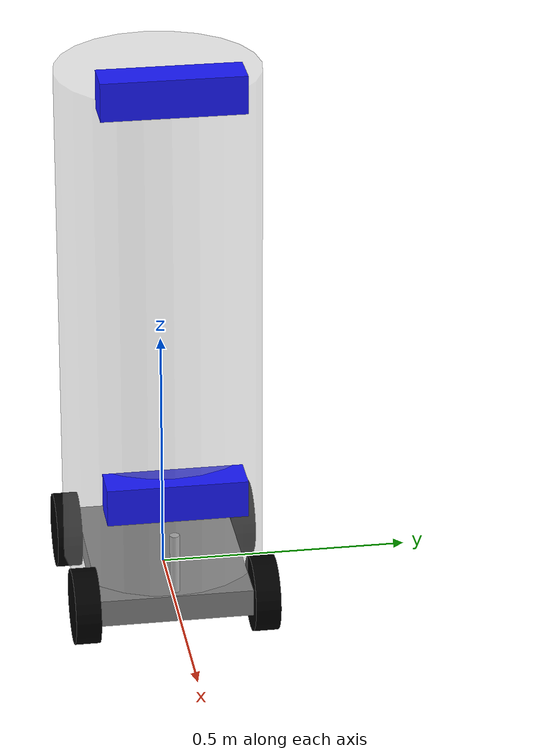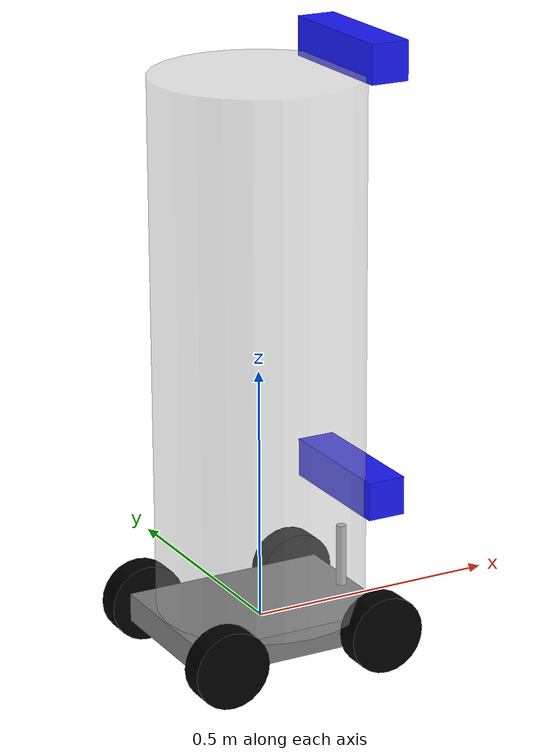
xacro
<?xml version="1.0"?>
<robot name="sherpa"
       xmlns:sensor="http://playerstage.sourceforge.net/gazebo/xmlschema/#sensor"
       xmlns:controller="http://playerstage.sourceforge.net/gazebo/xmlschema/#controller"
       xmlns:interface="http://playerstage.sourceforge.net/gazebo/xmlschema/#interface"
       xmlns:xacro="http://ros.org/wiki/xacro">

  <link name="base_link">
    <visual>
      <geometry>
        <box size="0.41148 0.30988 0.05588"/>
      </geometry>
      <material name="grey">
	<color rgba="0.5 0.5 0.5 1"/>
      </material>
    </visual>
    <collision>
      <geometry>
        <box size="0.41148 0.30988 0.05588"/>
      </geometry>
    </collision>
   <inertial>
      <mass value="20.0"/>
      <inertia ixx="1.0" iyy="1.0" izz="1.0"
               ixy="0" ixz="0" iyz="0"/>
    </inertial>
  </link>

  <gazebo reference="base_link">
    <material>Gazebo/Black</material>
  </gazebo>

  <link name="body_link">
    <visual>
      <geometry>
        <cylinder length="1.04775" radius="0.2032"/>
      </geometry>
      <material name="clear">
        <color rgba="0.75 0.75 0.75 0.4"/>
      </material>
    </visual>
    <collision>
      <geometry>
        <cylinder length="1.04775" radius="0.2032"/>
      </geometry>
    </collision>
    <inertial>
      <mass value="10.0"/>
      <inertia ixx="1.0" iyy="1.0" izz="1.0"
               ixy="0" ixz="0" iyz="0"/>
    </inertial>
  </link>

  <joint name="center_joint" type="fixed">
    <axis xyz="0 0 1"/>
    <parent link="base_link"/>
    <child link="body_link"/>
    <origin rpy="0 0 0" xyz="0 0 0.551815"/>
  </joint>

  <link name="camera_link">
    <visual>
      <geometry>
        <box size="0.0762 0.2794 0.0762"/>
      </geometry>
      <material name="blue">
	<color rgba="0.1 0.1 1 1"/>
      </material>
    </visual>
    <collision>
      <geometry>
        <box size="0.0762 0.2794 0.0762"/>
      </geometry>
    </collision>
   <inertial>
      <mass value="0.25"/>
      <inertia ixx="1.0" iyy="1.0" izz="1.0"
               ixy="0" ixz="0" iyz="0"/>
    </inertial>
  </link>

  <joint name="camera_joint" type="fixed">
    <axis xyz="0 0 1"/>
    <parent link="body_link"/>
    <child link="camera_link"/>
    <origin rpy="0 0 0" xyz="0.2 0 -0.3"/>
  </joint>

  <link name="laser_link">
    <visual>
      <geometry>
        <box size="0.0762 0.2794 0.0762"/>
      </geometry>
      <material name="blue">
	<color rgba="0.1 0.1 1 1"/>
      </material>
    </visual>
   <inertial>
      <mass value="0.25"/>
      <inertia ixx="1.0" iyy="1.0" izz="1.0"
               ixy="0" ixz="0" iyz="0"/>
    </inertial>
  </link>

  <joint name="laser_joint" type="fixed">
    <axis xyz="0 0 1"/>
    <parent link="body_link"/>
    <child link="laser_link"/>
    <origin rpy="0 0 0" xyz="0.2 0 0.55"/>
  </joint>

  <link name="hitch_front_link">
    <visual>
      <geometry>
        <cylinder length="0.1524" radius="0.01"/>
      </geometry>
      <material name="silver">
	<color rgba="0.75 0.75 0.75 1"/>
      </material>
    </visual>
    <collision>
      <geometry>
        <cylinder length="0.1524" radius="0.01"/>
      </geometry>
    </collision>
    <inertial>
      <mass value="0.1"/>
      <inertia ixx="1.0" iyy="1.0" izz="1.0"
               ixy="0" ixz="0" iyz="0"/>
    </inertial>
  </link>

  <joint name="hitch_joint" type="fixed">
    <axis xyz="0 0 1"/>
    <parent link="base_link"/>
    <child link="hitch_front_link"/>
    <origin rpy="0 0 0" xyz="0.18 0 0.0762"/>
  </joint>

  <link name="wheel_front_left">
    <visual>
      <geometry>
        <cylinder length="0.0508" radius="0.0762"/>
      </geometry>
      <material name="black">
        <color rgba="0 0 0 1"/>
      </material>
    </visual>
    <collision>
      <geometry>
        <cylinder length="0.0508" radius="0.0762"/>
      </geometry>
    </collision>
    <inertial>
      <mass value="0.1"/>
      <inertia ixx="1.0" iyy="1.0" izz="1.0"
               ixy="0" ixz="0" iyz="0"/>
    </inertial>
  </link>

  <joint name="axis_front_left" type="continuous">
    <axis xyz="0 0 1"/>
    <parent link="base_link"/>
    <child link="wheel_front_left"/>
    <origin rpy="-1.5708 0 0" xyz="0.165862 0.18034 0"/>
  </joint>

 <link name="wheel_front_right">
    <visual>
      <geometry>
        <cylinder length="0.0508" radius="0.0762"/>
      </geometry>
      <material name="black"/>
    </visual>
    <collision>
      <geometry>
        <cylinder length="0.0508" radius="0.0762"/>
      </geometry>
    </collision>
    <inertial>
      <mass value="0.1"/>
      <inertia ixx="1.0" iyy="1.0" izz="1.0"
               ixy="0" ixz="0" iyz="0"/>
    </inertial>
  </link>

  <joint name="axis_front_right" type="continuous">
    <axis xyz="0 0 1"/>
    <parent link="base_link"/>
    <child link="wheel_front_right"/>
    <origin rpy="-1.5708 0 0" xyz="0.165862 -0.18034 0"/>
  </joint>

  <link name="wheel_rear_right">
    <visual>
      <geometry>
        <cylinder length="0.0508" radius="0.0762"/>
      </geometry>
      <material name="black"/>
    </visual>
    <collision>
      <geometry>
        <cylinder length="0.0508" radius="0.0762"/>
      </geometry>
    </collision>
    <inertial>
      <mass value="0.1"/>
      <inertia ixx="1.0" iyy="1.0" izz="1.0"
               ixy="0" ixz="0" iyz="0"/>
    </inertial>
  </link>

  <joint name="axis_rear_right" type="continuous">
    <axis xyz="0 0 1"/>
    <parent link="base_link"/>
    <child link="wheel_rear_right"/>
    <origin rpy="-1.5708 0 0" xyz="-0.165862 -0.18034 0"/>
  </joint>

  <link name="wheel_rear_left">
    <visual>
      <geometry>
        <cylinder length="0.0508" radius="0.0762"/>
      </geometry>
      <material name="black"/>
    </visual>
    <collision>
      <geometry>
        <cylinder length="0.0508" radius="0.0762"/>
      </geometry>
    </collision>
    <inertial>
      <mass value="0.1"/>
      <inertia ixx="1.0" iyy="1.0" izz="1.0"
               ixy="0" ixz="0" iyz="0"/>
    </inertial>
    <gazebo reference="wheel_rear_left">
      <material>Gazebo/Black</material>
    </gazebo>
  </link>

  <joint name="axis_rear_left" type="continuous">
    <axis xyz="0 0 1"/>
    <parent link="base_link"/>
    <child link="wheel_rear_left"/>
    <origin rpy="-1.5708 0 0" xyz="-0.165862 0.18034 0"/>
  </joint>

<!--
*
* Gazebo Drivers
*
-->

<gazebo>
  <plugin name="skid_steer_drive_controller" filename="libgazebo_ros_skid_steer_drive.so">
    <updateRate>100.0</updateRate>
    <robotNamespace>/</robotNamespace>
    <leftFrontJoint>axis_front_left</leftFrontJoint>
    <rightFrontJoint>axis_front_right</rightFrontJoint>
    <leftRearJoint>axis_rear_left</leftRearJoint>
    <rightRearJoint>axis_rear_right</rightRearJoint>
    <wheelSeparation>0.254</wheelSeparation>
    <wheelDiameter>0.1524</wheelDiameter>
    <robotBaseFrame>base_link</robotBaseFrame>
    <torque>10</torque>
    <commandTopic>cmd_vel</commandTopic>
    <broadcastTF>1</broadcastTF>
  </plugin>
  <plugin name="joint_state_publisher" filename="libgazebo_ros_joint_state_publisher.so">
    <jointName>axis_front_left, axis_front_right, axis_rear_left, axis_rear_right</jointName>
  </plugin>
</gazebo>

<gazebo reference="laser_link">
    <material>Gazebo/Blue</material>
    <sensor type="ray" name="head_hokuyo_sensor">
      <pose>0 0 0 0 0 0</pose>
      <visualize>true</visualize>
      <update_rate>40</update_rate>
      <ray>
        <scan>
          <horizontal>
            <samples>720</samples>
            <resolution>1</resolution>
            <min_angle>-2.26889</min_angle>
            <max_angle>2.26889</max_angle>
          </horizontal>
        </scan>
        <range>
          <min>0.10</min>
          <max>30.0</max>
          <resolution>0.01</resolution>
        </range>
      </ray>
      <plugin name="gazebo_ros_head_hokuyo_controller" filename="libgazebo_ros_laser.so">
        <topicName>/scan</topicName>
        <frameName>laser_link</frameName>
      </plugin>
    </sensor>
  </gazebo>
</robot>
